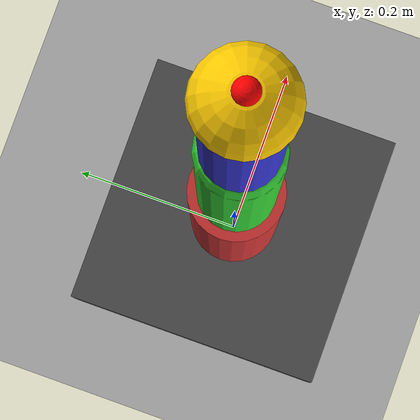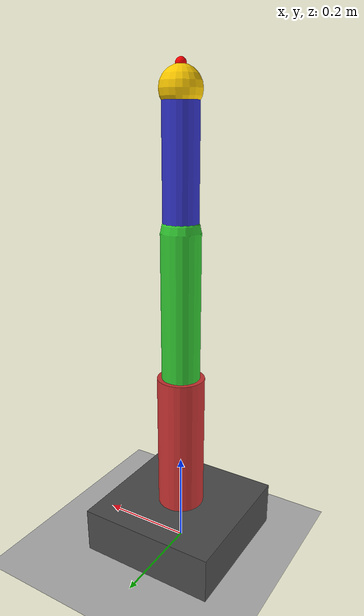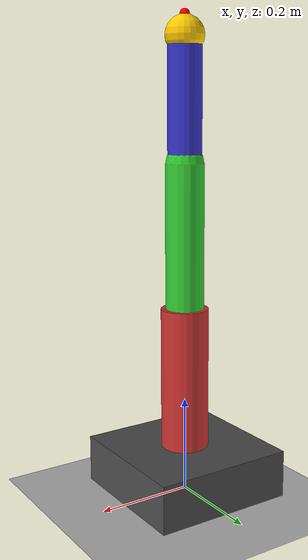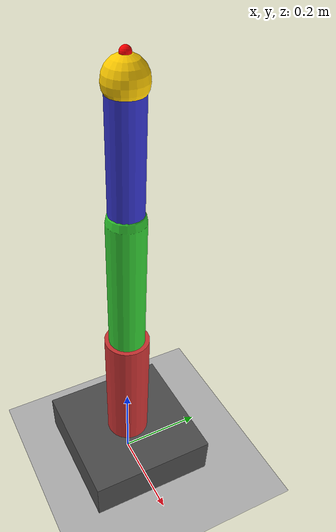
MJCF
<mujoco model="3dof_robot_arm">
  <compiler angle="radian" coordinate="local"/>

  <option timestep="0.001" gravity="0 0 -9.81" iterations="50" ls_iterations="10">
    <flag warmstart="enable"/>
  </option>

  <default>
    <joint damping="5" armature="0.5" frictionloss="0.1"/>
    <geom contype="1" conaffinity="1" friction="1 0.5 0.5" rgba="0.7 0.7 0.7 1"/>
  </default>

  <asset>
    <texture type="skybox" builtin="gradient" rgb1="0.3 0.5 0.7" rgb2="0 0 0" width="512" height="512"/>
    <texture name="texplane" type="2d" builtin="checker" rgb1="0.2 0.3 0.4" rgb2="0.1 0.15 0.2" width="512" height="512" mark="cross" markrgb="0.8 0.8 0.8"/>
    <material name="matplane" reflectance="0.3" texture="texplane" texrepeat="1 1" texuniform="true"/>
  </asset>

  <worldbody>
    <!-- Ground plane -->
    <geom name="floor" pos="0 0 0" size="2 2 0.1" type="plane" material="matplane"/>
    <light directional="true" diffuse="0.6 0.6 0.6" specular="0.3 0.3 0.3" pos="0 0 4" dir="0 0 -1"/>
    <light directional="true" diffuse="0.4 0.4 0.4" specular="0.2 0.2 0.2" pos="1 1 4" dir="0 0 -1"/>

    <!-- Target marker -->
    <body name="target" pos="0 0 0">
      <geom name="target_sphere" type="sphere" size="0.03" rgba="1 0 0 0.5" contype="0" conaffinity="0"/>
      <site name="target_site" pos="0 0 0" size="0.01"/>
    </body>

    <!-- Base platform -->
    <body name="base_platform" pos="0 0 0.05">
      <geom name="base_geom" type="box" size="0.15 0.15 0.05" rgba="0.3 0.3 0.3 1"/>
      <inertial pos="0 0 0" mass="2" diaginertia="0.01 0.01 0.01"/>

      <!-- Joint 1: Base rotation (θ₁) around Z-axis -->
      <body name="link1" pos="0 0 0.05">
        <joint name="joint1" type="hinge" pos="0 0 0" axis="0 0 1" range="-3.14 3.14" damping="2"/>
        <geom name="link1_geom" type="cylinder" size="0.05 0.15" pos="0 0 0.15" rgba="0.8 0.2 0.2 1"/>
        <inertial pos="0 0 0.15" mass="1" diaginertia="0.01 0.01 0.005"/>

        <!-- Joint 2: Shoulder (θ₂) around Y-axis -->
        <body name="link2" pos="0 0 0.3">
          <joint name="joint2" type="hinge" pos="0 0 0" axis="0 1 0" range="-1.57 1.57" damping="1.5"/>
          <geom name="link2_geom" type="capsule" fromto="0 0 0 0 0 0.3" size="0.04" rgba="0.2 0.8 0.2 1"/>
          <inertial pos="0 0 0.15" mass="0.8" diaginertia="0.008 0.008 0.002"/>

          <!-- Joint 3: Elbow (θ₃) around Y-axis -->
          <body name="link3" pos="0 0 0.3">
            <joint name="joint3" type="hinge" pos="0 0 0" axis="0 1 0" range="-2.0 2.0" damping="1"/>
            <geom name="link3_geom" type="capsule" fromto="0 0 0 0 0 0.25" size="0.035" rgba="0.2 0.2 0.8 1"/>
            <inertial pos="0 0 0.125" mass="0.5" diaginertia="0.005 0.005 0.001"/>

            <!-- End effector -->
            <body name="end_effector" pos="0 0 0.25">
              <geom name="ee_geom" type="sphere" size="0.04" rgba="1 0.8 0 1"/>
              <inertial pos="0 0 0" mass="0.1" diaginertia="0.0001 0.0001 0.0001"/>

              <!-- Site for end effector position tracking - at the tip of the sphere -->
              <site name="ee_site" pos="0 0 0.04" size="0.01" rgba="1 0 0 1"/>
            </body>
          </body>
        </body>
      </body>
    </body>
  </worldbody>

  <actuator>
    <!-- Position servos for each joint -->
    <motor name="actuator1" joint="joint1" ctrlrange="-5 5"/>
    <motor name="actuator2" joint="joint2" ctrlrange="-5 5"/>
    <motor name="actuator3" joint="joint3" ctrlrange="-5 5"/>
  </actuator>

  <sensor>
    <!-- Joint position sensors -->
    <jointpos name="joint1_pos" joint="joint1"/>
    <jointpos name="joint2_pos" joint="joint2"/>
    <jointpos name="joint3_pos" joint="joint3"/>

    <!-- Joint velocity sensors -->
    <jointvel name="joint1_vel" joint="joint1"/>
    <jointvel name="joint2_vel" joint="joint2"/>
    <jointvel name="joint3_vel" joint="joint3"/>

    <!-- End effector position sensor -->
    <framepos name="ee_pos" objtype="site" objname="ee_site"/>
  </sensor>
</mujoco>
